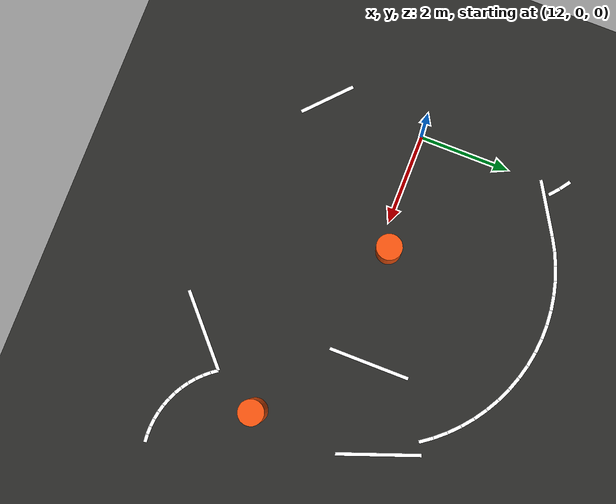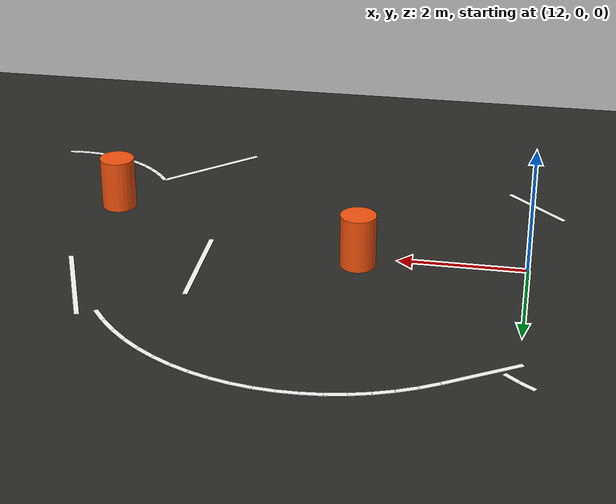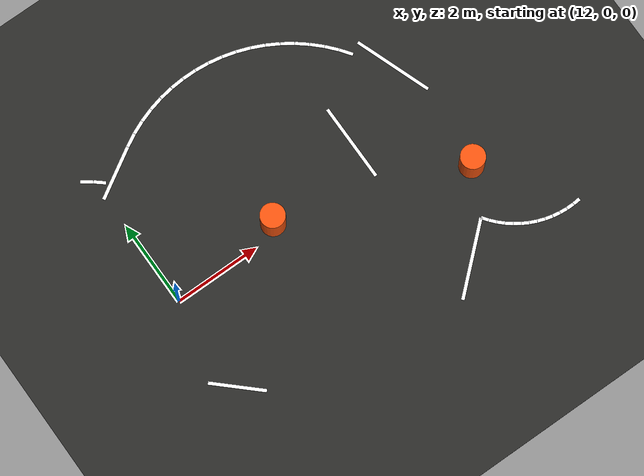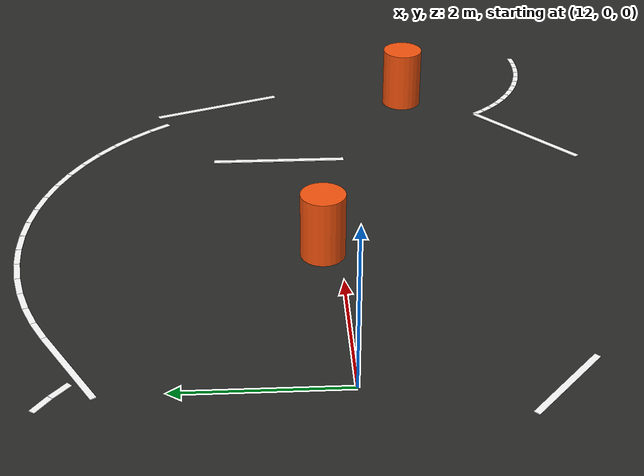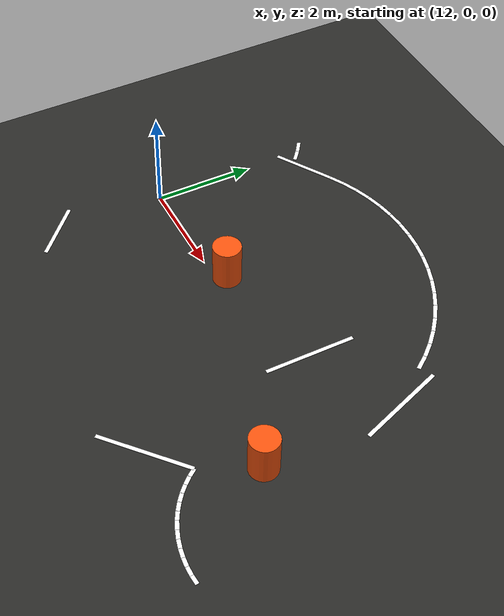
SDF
<sdf version="1.9">
 <world name="igvc_competition">
  <model name="asphalt_ground">
   <static>1</static>
   <pose>19.0000 0.5000 -0.0250 0.000000 0.000000 0.000000</pose>
   <link name="link">
    <collision name="collision"><geometry><box><size>60.0000 30.0000 0.0500</size></box></geometry></collision>
    <visual name="visual">
     <geometry><box><size>60.0000 30.0000 0.0500</size></box></geometry>
     <material>
      <ambient>0.16 0.16 0.15 1.0</ambient>
      <diffuse>0.16 0.16 0.15 1.0</diffuse>
      <specular>0.05 0.05 0.05 1</specular>
     </material>
    </visual>
   </link>
  </model>
  <model name="left_boundary_2">
   <static>1</static>
   <pose>12.4797 3.0823 0.011 0 0 0.549071</pose>
   <link name="link">
    <visual name="visual">
     <geometry><box><size>1.2612 0.0762 0.012</size></box></geometry>
     <material>
      <ambient>0.98 0.98 0.98 1</ambient>
      <diffuse>0.98 0.98 0.98 1</diffuse>
      <specular>0.05 0.05 0.05 1</specular>
      <emissive>0.9 0.9 0.9 1</emissive>
     </material>
    </visual>
   </link>
  </model>
  <model name="right_boundary_2">
   <static>1</static>
   <pose>11.9489 -2.2252 0.011 0 0 -0.748409</pose>
   <link name="link">
    <visual name="visual">
     <geometry><box><size>1.2612 0.0762 0.012</size></box></geometry>
     <material>
      <ambient>0.98 0.98 0.98 1</ambient>
      <diffuse>0.98 0.98 0.98 1</diffuse>
      <specular>0.05 0.05 0.05 1</specular>
      <emissive>0.9 0.9 0.9 1</emissive>
     </material>
    </visual>
   </link>
  </model>
  <model name="left_boundary_3">
   <static>1</static>
   <pose>18.7211 1.5761 0.011 0 0 -1.221090</pose>
   <link name="link">
    <visual name="visual">
     <geometry><box><size>1.8399 0.0762 0.012</size></box></geometry>
     <material>
      <ambient>0.98 0.98 0.98 1</ambient>
      <diffuse>0.98 0.98 0.98 1</diffuse>
      <specular>0.05 0.05 0.05 1</specular>
      <emissive>0.9 0.9 0.9 1</emissive>
     </material>
    </visual>
   </link>
  </model>
  <model name="right_boundary_3">
   <static>1</static>
   <pose>17.6122 -2.8594 0.011 0 0 0.731133</pose>
   <link name="link">
    <visual name="visual">
     <geometry><box><size>1.8399 0.0762 0.012</size></box></geometry>
     <material>
      <ambient>0.98 0.98 0.98 1</ambient>
      <diffuse>0.98 0.98 0.98 1</diffuse>
      <specular>0.05 0.05 0.05 1</specular>
      <emissive>0.9 0.9 0.9 1</emissive>
     </material>
    </visual>
   </link>
  </model>
  <model name="left_boundary_join_2_17">
   <static>1</static>
   <pose>11.8682 3.2848 0.011 0 0 -0.616771</pose>
   <link name="link">
    <visual name="visual">
     <geometry><box><size>0.2774 0.0762 0.012</size></box></geometry>
     <material>
      <ambient>0.98 0.98 0.98 1</ambient>
      <diffuse>0.98 0.98 0.98 1</diffuse>
      <specular>0.05 0.05 0.05 1</specular>
      <emissive>0.9 0.9 0.9 1</emissive>
     </material>
    </visual>
   </link>
  </model>
  <model name="left_boundary_join_2_18">
   <static>1</static>
   <pose>12.0872 3.1150 0.011 0 0 -0.702590</pose>
   <link name="link">
    <visual name="visual">
     <geometry><box><size>0.2774 0.0762 0.012</size></box></geometry>
     <material>
      <ambient>0.98 0.98 0.98 1</ambient>
      <diffuse>0.98 0.98 0.98 1</diffuse>
      <specular>0.05 0.05 0.05 1</specular>
      <emissive>0.9 0.9 0.9 1</emissive>
     </material>
    </visual>
   </link>
  </model>
  <model name="left_boundary_join_3_0">
   <static>1</static>
   <pose>13.1591 3.4895 0.011 0 0 0.503802</pose>
   <link name="link">
    <visual name="visual">
     <geometry><box><size>0.3233 0.0762 0.012</size></box></geometry>
     <material>
      <ambient>0.98 0.98 0.98 1</ambient>
      <diffuse>0.98 0.98 0.98 1</diffuse>
      <specular>0.05 0.05 0.05 1</specular>
      <emissive>0.9 0.9 0.9 1</emissive>
     </material>
    </visual>
   </link>
  </model>
  <model name="left_boundary_join_3_1">
   <static>1</static>
   <pose>13.4483 3.6333 0.011 0 0 0.419082</pose>
   <link name="link">
    <visual name="visual">
     <geometry><box><size>0.3233 0.0762 0.012</size></box></geometry>
     <material>
      <ambient>0.98 0.98 0.98 1</ambient>
      <diffuse>0.98 0.98 0.98 1</diffuse>
      <specular>0.05 0.05 0.05 1</specular>
      <emissive>0.9 0.9 0.9 1</emissive>
     </material>
    </visual>
   </link>
  </model>
  <model name="left_boundary_join_3_2">
   <static>1</static>
   <pose>13.7486 3.7521 0.011 0 0 0.334362</pose>
   <link name="link">
    <visual name="visual">
     <geometry><box><size>0.3233 0.0762 0.012</size></box></geometry>
     <material>
      <ambient>0.98 0.98 0.98 1</ambient>
      <diffuse>0.98 0.98 0.98 1</diffuse>
      <specular>0.05 0.05 0.05 1</specular>
      <emissive>0.9 0.9 0.9 1</emissive>
     </material>
    </visual>
   </link>
  </model>
  <model name="left_boundary_join_3_3">
   <static>1</static>
   <pose>14.0579 3.8450 0.011 0 0 0.249642</pose>
   <link name="link">
    <visual name="visual">
     <geometry><box><size>0.3233 0.0762 0.012</size></box></geometry>
     <material>
      <ambient>0.98 0.98 0.98 1</ambient>
      <diffuse>0.98 0.98 0.98 1</diffuse>
      <specular>0.05 0.05 0.05 1</specular>
      <emissive>0.9 0.9 0.9 1</emissive>
     </material>
    </visual>
   </link>
  </model>
  <model name="left_boundary_join_3_4">
   <static>1</static>
   <pose>14.3740 3.9115 0.011 0 0 0.164922</pose>
   <link name="link">
    <visual name="visual">
     <geometry><box><size>0.3233 0.0762 0.012</size></box></geometry>
     <material>
      <ambient>0.98 0.98 0.98 1</ambient>
      <diffuse>0.98 0.98 0.98 1</diffuse>
      <specular>0.05 0.05 0.05 1</specular>
      <emissive>0.9 0.9 0.9 1</emissive>
     </material>
    </visual>
   </link>
  </model>
  <model name="left_boundary_join_3_5">
   <static>1</static>
   <pose>14.6945 3.9510 0.011 0 0 0.080203</pose>
   <link name="link">
    <visual name="visual">
     <geometry><box><size>0.3233 0.0762 0.012</size></box></geometry>
     <material>
      <ambient>0.98 0.98 0.98 1</ambient>
      <diffuse>0.98 0.98 0.98 1</diffuse>
      <specular>0.05 0.05 0.05 1</specular>
      <emissive>0.9 0.9 0.9 1</emissive>
     </material>
    </visual>
   </link>
  </model>
  <model name="left_boundary_join_3_6">
   <static>1</static>
   <pose>15.0172 3.9632 0.011 0 0 -0.004517</pose>
   <link name="link">
    <visual name="visual">
     <geometry><box><size>0.3233 0.0762 0.012</size></box></geometry>
     <material>
      <ambient>0.98 0.98 0.98 1</ambient>
      <diffuse>0.98 0.98 0.98 1</diffuse>
      <specular>0.05 0.05 0.05 1</specular>
      <emissive>0.9 0.9 0.9 1</emissive>
     </material>
    </visual>
   </link>
  </model>
  <model name="left_boundary_join_3_7">
   <static>1</static>
   <pose>15.3398 3.9481 0.011 0 0 -0.089237</pose>
   <link name="link">
    <visual name="visual">
     <geometry><box><size>0.3233 0.0762 0.012</size></box></geometry>
     <material>
      <ambient>0.98 0.98 0.98 1</ambient>
      <diffuse>0.98 0.98 0.98 1</diffuse>
      <specular>0.05 0.05 0.05 1</specular>
      <emissive>0.9 0.9 0.9 1</emissive>
     </material>
    </visual>
   </link>
  </model>
  <model name="left_boundary_join_3_8">
   <static>1</static>
   <pose>15.6600 3.9057 0.011 0 0 -0.173957</pose>
   <link name="link">
    <visual name="visual">
     <geometry><box><size>0.3233 0.0762 0.012</size></box></geometry>
     <material>
      <ambient>0.98 0.98 0.98 1</ambient>
      <diffuse>0.98 0.98 0.98 1</diffuse>
      <specular>0.05 0.05 0.05 1</specular>
      <emissive>0.9 0.9 0.9 1</emissive>
     </material>
    </visual>
   </link>
  </model>
  <model name="left_boundary_join_3_9">
   <static>1</static>
   <pose>15.9754 3.8364 0.011 0 0 -0.258677</pose>
   <link name="link">
    <visual name="visual">
     <geometry><box><size>0.3233 0.0762 0.012</size></box></geometry>
     <material>
      <ambient>0.98 0.98 0.98 1</ambient>
      <diffuse>0.98 0.98 0.98 1</diffuse>
      <specular>0.05 0.05 0.05 1</specular>
      <emissive>0.9 0.9 0.9 1</emissive>
     </material>
    </visual>
   </link>
  </model>
  <model name="left_boundary_join_3_10">
   <static>1</static>
   <pose>16.2839 3.7406 0.011 0 0 -0.343397</pose>
   <link name="link">
    <visual name="visual">
     <geometry><box><size>0.3233 0.0762 0.012</size></box></geometry>
     <material>
      <ambient>0.98 0.98 0.98 1</ambient>
      <diffuse>0.98 0.98 0.98 1</diffuse>
      <specular>0.05 0.05 0.05 1</specular>
      <emissive>0.9 0.9 0.9 1</emissive>
     </material>
    </visual>
   </link>
  </model>
  <model name="left_boundary_join_3_11">
   <static>1</static>
   <pose>16.5831 3.6191 0.011 0 0 -0.428117</pose>
   <link name="link">
    <visual name="visual">
     <geometry><box><size>0.3233 0.0762 0.012</size></box></geometry>
     <material>
      <ambient>0.98 0.98 0.98 1</ambient>
      <diffuse>0.98 0.98 0.98 1</diffuse>
      <specular>0.05 0.05 0.05 1</specular>
      <emissive>0.9 0.9 0.9 1</emissive>
     </material>
    </visual>
   </link>
  </model>
  <model name="left_boundary_join_3_12">
   <static>1</static>
   <pose>16.8710 3.4727 0.011 0 0 -0.512837</pose>
   <link name="link">
    <visual name="visual">
     <geometry><box><size>0.3233 0.0762 0.012</size></box></geometry>
     <material>
      <ambient>0.98 0.98 0.98 1</ambient>
      <diffuse>0.98 0.98 0.98 1</diffuse>
      <specular>0.05 0.05 0.05 1</specular>
      <emissive>0.9 0.9 0.9 1</emissive>
     </material>
    </visual>
   </link>
  </model>
  <model name="left_boundary_join_3_13">
   <static>1</static>
   <pose>17.1454 3.3025 0.011 0 0 -0.597557</pose>
   <link name="link">
    <visual name="visual">
     <geometry><box><size>0.3233 0.0762 0.012</size></box></geometry>
     <material>
      <ambient>0.98 0.98 0.98 1</ambient>
      <diffuse>0.98 0.98 0.98 1</diffuse>
      <specular>0.05 0.05 0.05 1</specular>
      <emissive>0.9 0.9 0.9 1</emissive>
     </material>
    </visual>
   </link>
  </model>
  <model name="left_boundary_join_3_14">
   <static>1</static>
   <pose>17.4045 3.1096 0.011 0 0 -0.682277</pose>
   <link name="link">
    <visual name="visual">
     <geometry><box><size>0.3233 0.0762 0.012</size></box></geometry>
     <material>
      <ambient>0.98 0.98 0.98 1</ambient>
      <diffuse>0.98 0.98 0.98 1</diffuse>
      <specular>0.05 0.05 0.05 1</specular>
      <emissive>0.9 0.9 0.9 1</emissive>
     </material>
    </visual>
   </link>
  </model>
  <model name="left_boundary_join_3_15">
   <static>1</static>
   <pose>17.6463 2.8955 0.011 0 0 -0.766997</pose>
   <link name="link">
    <visual name="visual">
     <geometry><box><size>0.3233 0.0762 0.012</size></box></geometry>
     <material>
      <ambient>0.98 0.98 0.98 1</ambient>
      <diffuse>0.98 0.98 0.98 1</diffuse>
      <specular>0.05 0.05 0.05 1</specular>
      <emissive>0.9 0.9 0.9 1</emissive>
     </material>
    </visual>
   </link>
  </model>
  <model name="left_boundary_join_3_16">
   <static>1</static>
   <pose>17.8691 2.6618 0.011 0 0 -0.851717</pose>
   <link name="link">
    <visual name="visual">
     <geometry><box><size>0.3233 0.0762 0.012</size></box></geometry>
     <material>
      <ambient>0.98 0.98 0.98 1</ambient>
      <diffuse>0.98 0.98 0.98 1</diffuse>
      <specular>0.05 0.05 0.05 1</specular>
      <emissive>0.9 0.9 0.9 1</emissive>
     </material>
    </visual>
   </link>
  </model>
  <model name="left_boundary_join_3_17">
   <static>1</static>
   <pose>18.0714 2.4100 0.011 0 0 -0.936437</pose>
   <link name="link">
    <visual name="visual">
     <geometry><box><size>0.3233 0.0762 0.012</size></box></geometry>
     <material>
      <ambient>0.98 0.98 0.98 1</ambient>
      <diffuse>0.98 0.98 0.98 1</diffuse>
      <specular>0.05 0.05 0.05 1</specular>
      <emissive>0.9 0.9 0.9 1</emissive>
     </material>
    </visual>
   </link>
  </model>
  <model name="right_boundary_join_4_0">
   <static>1</static>
   <pose>18.3488 -2.3155 0.011 0 0 -0.936211</pose>
   <link name="link">
    <visual name="visual">
     <geometry><box><size>0.1747 0.0762 0.012</size></box></geometry>
     <material>
      <ambient>0.98 0.98 0.98 1</ambient>
      <diffuse>0.98 0.98 0.98 1</diffuse>
      <specular>0.05 0.05 0.05 1</specular>
      <emissive>0.9 0.9 0.9 1</emissive>
     </material>
    </visual>
   </link>
  </model>
  <model name="right_boundary_join_4_1">
   <static>1</static>
   <pose>18.4582 -2.4516 0.011 0 0 -0.851041</pose>
   <link name="link">
    <visual name="visual">
     <geometry><box><size>0.1747 0.0762 0.012</size></box></geometry>
     <material>
      <ambient>0.98 0.98 0.98 1</ambient>
      <diffuse>0.98 0.98 0.98 1</diffuse>
      <specular>0.05 0.05 0.05 1</specular>
      <emissive>0.9 0.9 0.9 1</emissive>
     </material>
    </visual>
   </link>
  </model>
  <model name="right_boundary_join_4_2">
   <static>1</static>
   <pose>18.5788 -2.5778 0.011 0 0 -0.765870</pose>
   <link name="link">
    <visual name="visual">
     <geometry><box><size>0.1747 0.0762 0.012</size></box></geometry>
     <material>
      <ambient>0.98 0.98 0.98 1</ambient>
      <diffuse>0.98 0.98 0.98 1</diffuse>
      <specular>0.05 0.05 0.05 1</specular>
      <emissive>0.9 0.9 0.9 1</emissive>
     </material>
    </visual>
   </link>
  </model>
  <model name="right_boundary_join_4_3">
   <static>1</static>
   <pose>18.7097 -2.6934 0.011 0 0 -0.680699</pose>
   <link name="link">
    <visual name="visual">
     <geometry><box><size>0.1747 0.0762 0.012</size></box></geometry>
     <material>
      <ambient>0.98 0.98 0.98 1</ambient>
      <diffuse>0.98 0.98 0.98 1</diffuse>
      <specular>0.05 0.05 0.05 1</specular>
      <emissive>0.9 0.9 0.9 1</emissive>
     </material>
    </visual>
   </link>
  </model>
  <model name="right_boundary_join_4_4">
   <static>1</static>
   <pose>18.8499 -2.7974 0.011 0 0 -0.595529</pose>
   <link name="link">
    <visual name="visual">
     <geometry><box><size>0.1747 0.0762 0.012</size></box></geometry>
     <material>
      <ambient>0.98 0.98 0.98 1</ambient>
      <diffuse>0.98 0.98 0.98 1</diffuse>
      <specular>0.05 0.05 0.05 1</specular>
      <emissive>0.9 0.9 0.9 1</emissive>
     </material>
    </visual>
   </link>
  </model>
  <model name="right_boundary_join_4_5">
   <static>1</static>
   <pose>18.9984 -2.8891 0.011 0 0 -0.510358</pose>
   <link name="link">
    <visual name="visual">
     <geometry><box><size>0.1747 0.0762 0.012</size></box></geometry>
     <material>
      <ambient>0.98 0.98 0.98 1</ambient>
      <diffuse>0.98 0.98 0.98 1</diffuse>
      <specular>0.05 0.05 0.05 1</specular>
      <emissive>0.9 0.9 0.9 1</emissive>
     </material>
    </visual>
   </link>
  </model>
  <model name="right_boundary_join_4_6">
   <static>1</static>
   <pose>19.1543 -2.9678 0.011 0 0 -0.425187</pose>
   <link name="link">
    <visual name="visual">
     <geometry><box><size>0.1747 0.0762 0.012</size></box></geometry>
     <material>
      <ambient>0.98 0.98 0.98 1</ambient>
      <diffuse>0.98 0.98 0.98 1</diffuse>
      <specular>0.05 0.05 0.05 1</specular>
      <emissive>0.9 0.9 0.9 1</emissive>
     </material>
    </visual>
   </link>
  </model>
  <model name="right_boundary_join_4_7">
   <static>1</static>
   <pose>19.3162 -3.0329 0.011 0 0 -0.340017</pose>
   <link name="link">
    <visual name="visual">
     <geometry><box><size>0.1747 0.0762 0.012</size></box></geometry>
     <material>
      <ambient>0.98 0.98 0.98 1</ambient>
      <diffuse>0.98 0.98 0.98 1</diffuse>
      <specular>0.05 0.05 0.05 1</specular>
      <emissive>0.9 0.9 0.9 1</emissive>
     </material>
    </visual>
   </link>
  </model>
  <model name="right_boundary_join_4_8">
   <static>1</static>
   <pose>19.4831 -3.0841 0.011 0 0 -0.254846</pose>
   <link name="link">
    <visual name="visual">
     <geometry><box><size>0.1747 0.0762 0.012</size></box></geometry>
     <material>
      <ambient>0.98 0.98 0.98 1</ambient>
      <diffuse>0.98 0.98 0.98 1</diffuse>
      <specular>0.05 0.05 0.05 1</specular>
      <emissive>0.9 0.9 0.9 1</emissive>
     </material>
    </visual>
   </link>
  </model>
  <model name="right_boundary_join_4_9">
   <static>1</static>
   <pose>19.6538 -3.1209 0.011 0 0 -0.169675</pose>
   <link name="link">
    <visual name="visual">
     <geometry><box><size>0.1747 0.0762 0.012</size></box></geometry>
     <material>
      <ambient>0.98 0.98 0.98 1</ambient>
      <diffuse>0.98 0.98 0.98 1</diffuse>
      <specular>0.05 0.05 0.05 1</specular>
      <emissive>0.9 0.9 0.9 1</emissive>
     </material>
    </visual>
   </link>
  </model>
  <model name="right_boundary_join_4_10">
   <static>1</static>
   <pose>19.8269 -3.1430 0.011 0 0 -0.084505</pose>
   <link name="link">
    <visual name="visual">
     <geometry><box><size>0.1747 0.0762 0.012</size></box></geometry>
     <material>
      <ambient>0.98 0.98 0.98 1</ambient>
      <diffuse>0.98 0.98 0.98 1</diffuse>
      <specular>0.05 0.05 0.05 1</specular>
      <emissive>0.9 0.9 0.9 1</emissive>
     </material>
    </visual>
   </link>
  </model>
  <model name="right_boundary_join_4_11">
   <static>1</static>
   <pose>20.0014 -3.1503 0.011 0 0 0.000666</pose>
   <link name="link">
    <visual name="visual">
     <geometry><box><size>0.1747 0.0762 0.012</size></box></geometry>
     <material>
      <ambient>0.98 0.98 0.98 1</ambient>
      <diffuse>0.98 0.98 0.98 1</diffuse>
      <specular>0.05 0.05 0.05 1</specular>
      <emissive>0.9 0.9 0.9 1</emissive>
     </material>
    </visual>
   </link>
  </model>
  <model name="right_boundary_join_4_12">
   <static>1</static>
   <pose>20.1758 -3.1428 0.011 0 0 0.085837</pose>
   <link name="link">
    <visual name="visual">
     <geometry><box><size>0.1747 0.0762 0.012</size></box></geometry>
     <material>
      <ambient>0.98 0.98 0.98 1</ambient>
      <diffuse>0.98 0.98 0.98 1</diffuse>
      <specular>0.05 0.05 0.05 1</specular>
      <emissive>0.9 0.9 0.9 1</emissive>
     </material>
    </visual>
   </link>
  </model>
  <model name="internal_no_cross">
   <static>1</static>
   <pose>17.0000 0.7000 0.011 0 0 -1.570796</pose>
   <link name="link">
    <visual name="visual">
     <geometry><box><size>1.8000 0.0762 0.012</size></box></geometry>
     <material>
      <ambient>0.98 0.98 0.98 1</ambient>
      <diffuse>0.98 0.98 0.98 1</diffuse>
      <specular>0.05 0.05 0.05 1</specular>
      <emissive>0.9 0.9 0.9 1</emissive>
     </material>
    </visual>
   </link>
  </model>
  <model name="center_barrel_20ft">
   <static>1</static>
   <pose>14.6000 0.2200 0 0 0 0</pose>
   <link name="link">
    <collision name="collision">
     <pose>0 0 0.4250 0 0 0</pose>
     <geometry><cylinder><radius>0.2800</radius><length>0.8500</length></cylinder></geometry>
    </collision>
    <visual name="visual">
     <pose>0 0 0.4250 0 0 0</pose>
     <geometry><cylinder><radius>0.2800</radius><length>0.8500</length></cylinder></geometry>
     <material>
      <ambient>0.95 0.32 0.05 1.0</ambient>
      <diffuse>0.95 0.32 0.05 1.0</diffuse>
      <specular>0.05 0.05 0.05 1</specular>
     </material>
    </visual>
   </link>
  </model>
  <model name="decoy_gap_barrel">
   <static>1</static>
   <pose>18.8000 -1.2000 0 0 0 0</pose>
   <link name="link">
    <collision name="collision">
     <pose>0 0 0.4250 0 0 0</pose>
     <geometry><cylinder><radius>0.2800</radius><length>0.8500</length></cylinder></geometry>
    </collision>
    <visual name="visual">
     <pose>0 0 0.4250 0 0 0</pose>
     <geometry><cylinder><radius>0.2800</radius><length>0.8500</length></cylinder></geometry>
     <material>
      <ambient>0.95 0.32 0.05 1.0</ambient>
      <diffuse>0.95 0.32 0.05 1.0</diffuse>
      <specular>0.05 0.05 0.05 1</specular>
     </material>
    </visual>
   </link>
  </model>
 </world>
</sdf>
